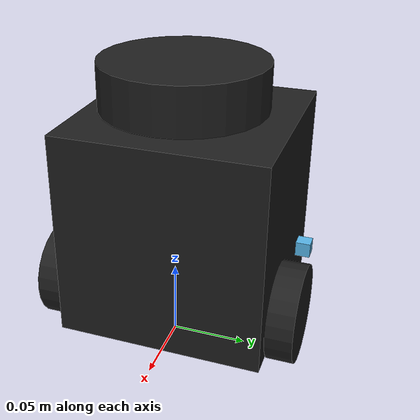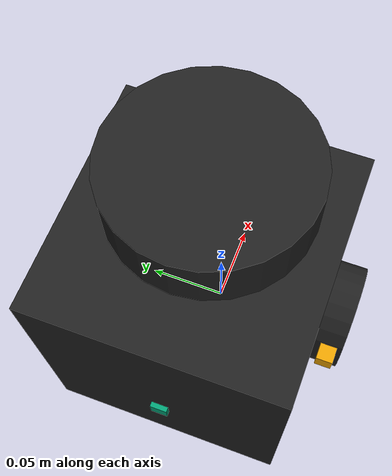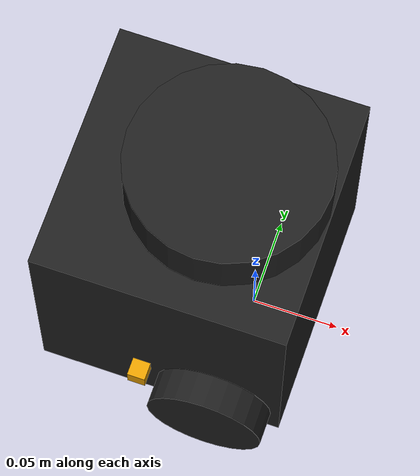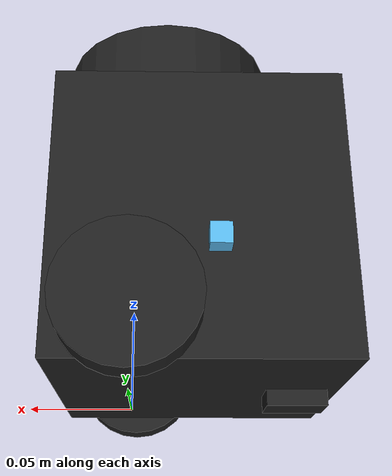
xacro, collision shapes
<?xml version="1.0" ?>
<robot name="turtlebot3_burger" xmlns:xacro="http://ros.org/wiki/xacro">
  <xacro:include filename="$(find turtlebot3_description)/urdf/common_properties.xacro"/>
  <xacro:include filename="$(find turtlebot3_description)/urdf/turtlebot3_burger.gazebo.xacro"/>

  <link name="base_footprint"/>

  <joint name="base_joint" type="fixed">
    <parent link="base_footprint"/>
    <child link="base_link"/>
    <origin xyz="0.0 0.0 0.010" rpy="0 0 0"/>
  </joint>

  <link name="base_link">
    <visual>
      <origin xyz="-0.032 0 0.0" rpy="0 0 0"/>
      <geometry>
        <mesh filename="package://turtlebot3_description/meshes/bases/burger_base.stl" scale="0.001 0.001 0.001"/>
      </geometry>
      <material name="light_black"/>
    </visual>

    <collision>
      <origin xyz="-0.032 0 0.070" rpy="0 0 0"/>
      <geometry>
        <box size="0.140 0.140 0.143"/>
      </geometry>
    </collision>

    <inertial>
      <origin xyz="0 0 0" rpy="0 0 0"/>
      <mass value="8.2573504e-01"/>
      <inertia ixx="2.2124416e-03" ixy="-1.2294101e-05" ixz="3.4938785e-05"
               iyy="2.1193702e-03" iyz="-5.0120904e-06"
               izz="2.0064271e-03" />
    </inertial>
  </link>

  <joint name="wheel_left_joint" type="continuous">
    <parent link="base_link"/>
    <child link="wheel_left_link"/>
    <origin xyz="0.0 0.08 0.023" rpy="-1.57 0 0"/>
    <axis xyz="0 0 1"/>
  </joint>

  <link name="wheel_left_link">
    <visual>
      <origin xyz="0 0 0" rpy="1.57 0 0"/>
      <geometry>
        <mesh filename="package://turtlebot3_description/meshes/wheels/left_tire.stl" scale="0.001 0.001 0.001"/>
      </geometry>
      <material name="dark"/>
    </visual>

    <collision>
      <origin xyz="0 0 0" rpy="0 0 0"/>
      <geometry>
        <cylinder length="0.018" radius="0.033"/>
      </geometry>
    </collision>

    <inertial>
      <origin xyz="0 0 0" />
      <mass value="2.8498940e-02" />
      <inertia ixx="1.1175580e-05" ixy="-4.2369783e-11" ixz="-5.9381719e-09"
               iyy="1.1192413e-05" iyz="-1.4400107e-11"
               izz="2.0712558e-05" />
      </inertial>
  </link>

  <joint name="wheel_right_joint" type="continuous">
    <parent link="base_link"/>
    <child link="wheel_right_link"/>
    <origin xyz="0.0 -0.080 0.023" rpy="-1.57 0 0"/>
    <axis xyz="0 0 1"/>
  </joint>

  <link name="wheel_right_link">
    <visual>
      <origin xyz="0 0 0" rpy="1.57 0 0"/>
      <geometry>
        <mesh filename="package://turtlebot3_description/meshes/wheels/right_tire.stl" scale="0.001 0.001 0.001"/>
      </geometry>
      <material name="dark"/>
    </visual>

    <collision>
      <origin xyz="0 0 0" rpy="0 0 0"/>
      <geometry>
        <cylinder length="0.018" radius="0.033"/>
      </geometry>
    </collision>

    <inertial>
      <origin xyz="0 0 0" />
      <mass value="2.8498940e-02" />
      <inertia ixx="1.1175580e-05" ixy="-4.2369783e-11" ixz="-5.9381719e-09"
               iyy="1.1192413e-05" iyz="-1.4400107e-11"
               izz="2.0712558e-05" />
      </inertial>
  </link>

  <joint name="caster_back_joint" type="fixed">
    <parent link="base_link"/>
    <child link="caster_back_link"/>
    <origin xyz="-0.081 0 -0.004" rpy="-1.57 0 0"/>
  </joint>

  <link name="caster_back_link">
    <collision>
      <origin xyz="0 0.001 0" rpy="0 0 0"/>
      <geometry>
        <box size="0.030 0.009 0.020"/>
      </geometry>
    </collision>

    <inertial>
      <origin xyz="0 0 0" />
      <mass value="0.005" />
      <inertia ixx="0.001" ixy="0.0" ixz="0.0"
               iyy="0.001" iyz="0.0"
               izz="0.001" />
    </inertial>
  </link>

  <joint name="imu_joint" type="fixed">
    <parent link="base_link"/>
    <child link="imu_link"/>
    <origin xyz="-0.032 0 0.068" rpy="0 0 0"/>
  </joint>

  <link name="imu_link"/>

  <joint name="scan_joint" type="fixed">
    <parent link="base_link"/>
    <child link="base_scan"/>
    <origin xyz="-0.032 0 0.172" rpy="0 0 0"/>
  </joint>

  <link name="base_scan">
    <visual>
      <origin xyz="0 0 0.0" rpy="0 0 0"/>
      <geometry>
        <mesh filename="package://turtlebot3_description/meshes/sensors/lds.stl" scale="0.001 0.001 0.001"/>
      </geometry>
      <material name="dark"/>
    </visual>

    <collision>
      <origin xyz="0.015 0 -0.0065" rpy="0 0 0"/>
      <geometry>
        <cylinder length="0.0315" radius="0.055"/>
      </geometry>
    </collision>

    <inertial>
      <mass value="0.114" />
      <origin xyz="0 0 0" />
      <inertia ixx="0.001" ixy="0.0" ixz="0.0"
               iyy="0.001" iyz="0.0"
               izz="0.001" />
    </inertial>
  </link>

 <xacro:include filename="$(find turtlebot3_description)/urdf/ultrasonic_sensor.position.macro.xacro"/>
 <ultrasonic_position_macro position="front" xyz="0.032 0 0.05" rpy="0 0 0" />
 <ultrasonic_position_macro position="right" xyz="-0.04 -0.08 0.05" rpy="0 0 -1.57" />
 <ultrasonic_position_macro position="left" xyz="-0.04 0.08 0.05" rpy="0 0 1.57" />
 <ultrasonic_position_macro position="back" xyz="-0.1 0 0.05" rpy="0 0 -3.14" />

</robot>

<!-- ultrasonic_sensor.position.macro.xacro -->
<robot name="turtlebot3_burger_sim" xmlns:xacro="http://ros.org/wiki/xacro">
    <macro name="ultrasonic_position_macro" params="position xyz rpy">
        <!-- Ultrasonic sensors link definition -->

        <joint name="${position}_ultrasonic_joint" type="fixed">
            <parent link="base_link"/>
            <child link="${position}_ultrasonic_link"/>
            <origin xyz="${xyz}" rpy="${rpy}" />
        </joint>

        <link name="${position}_ultrasonic_link">
            <collision>
            <origin xyz="0 0 0" rpy="0 0 0"/>
            <geometry>
                <box size="0.01 0.01 0.01"/>
            </geometry>
            </collision>
            <visual>
            <origin xyz="0 0 0" rpy="0 0 0"/>
            <geometry>
                <box size="0.01 0.01 0.01"/>
            </geometry>
            </visual>
            <inertial>
            <mass value="1e-5" />
            <origin xyz="0 0 0" rpy="0 0 0"/>
            <inertia ixx="1e-6" ixy="0" ixz="0" iyy="1e-6" iyz="0"      izz="1e-6" />
            </inertial>
        </link>
    </macro>

</robot>
